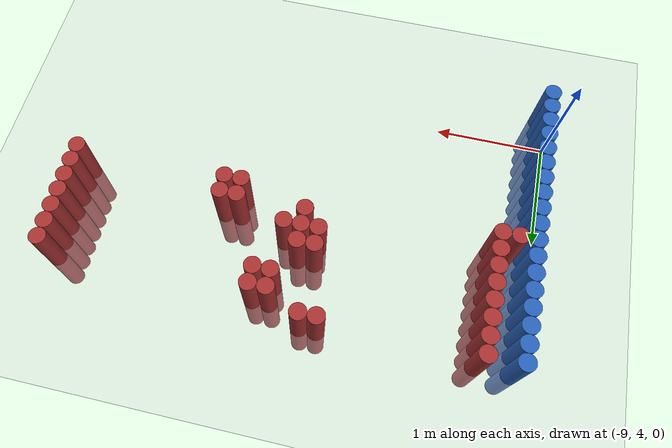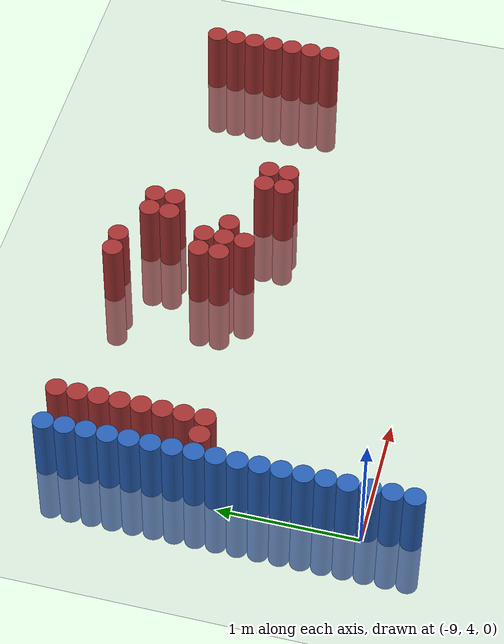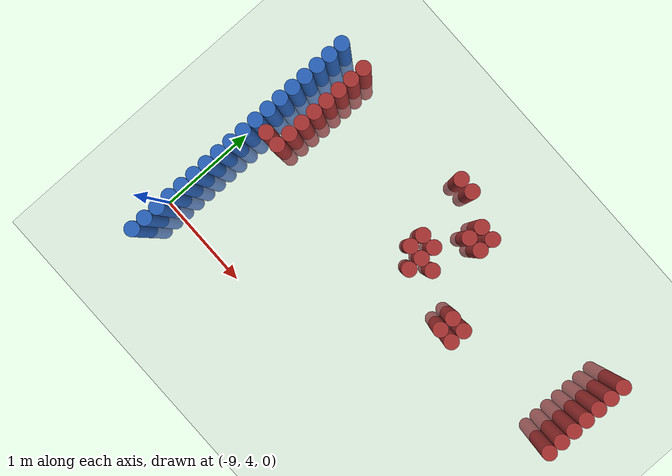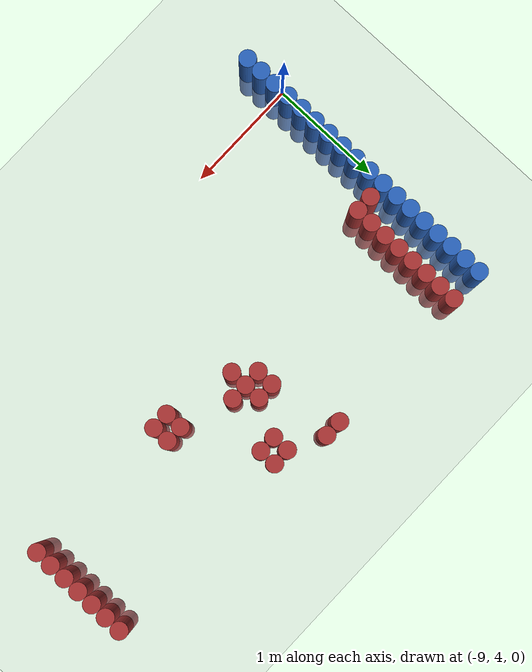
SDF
<sdf version="1.6">
 <world name="default">
  <model name="ground_plane">
   <static>1</static>
   <link name="link">
    <collision name="collision">
     <geometry><plane><normal>0 0 1</normal><size>100 100</size></plane></geometry>
     <surface><friction><ode><mu>100</mu><mu2>50</mu2></ode></friction></surface>
    </collision>
    <visual name="visual">
     <cast_shadows>0</cast_shadows>
     <geometry><plane><normal>0 0 1</normal><size>100 100</size></plane></geometry>
     <material>
      <script><uri>file://media/materials/scripts/gazebo.material</uri><name>Gazebo/Grey</name></script>
     </material>
    </visual>
   </link>
  </model>
  <model name="unit_cylinder_106">
   <static>1</static>
   <pose>-8.925000 3.675000 0.000000 0.000000 0.000000 0.000000</pose>
   <link name="link">
    <inertial>
     <mass>1</mass>
     <inertia><ixx>0.145833</ixx><ixy>0</ixy><ixz>0</ixz><iyy>0.145833</iyy><iyz>0</iyz><izz>0.125</izz></inertia>
    </inertial>
    <collision name="collision">
     <geometry><cylinder><radius>0.075000</radius><length>1</length></cylinder></geometry>
    </collision>
    <visual name="visual">
     <geometry><cylinder><radius>0.075000</radius><length>1</length></cylinder></geometry>
     <material>
      <ambient>0.152000 0.379000 0.720000 1</ambient>
      <diffuse>0.152000 0.379000 0.720000 1</diffuse>
     </material>
     <material>
      <script><name>Gazebo/Grey</name><uri>file://media/materials/scripts/gazebo.material</uri></script>
     </material>
    </visual>
   </link>
  </model>
  <model name="unit_cylinder_108">
   <static>1</static>
   <pose>-8.925000 3.825000 0.000000 0.000000 0.000000 0.000000</pose>
   <link name="link">
    <inertial>
     <mass>1</mass>
     <inertia><ixx>0.145833</ixx><ixy>0</ixy><ixz>0</ixz><iyy>0.145833</iyy><iyz>0</iyz><izz>0.125</izz></inertia>
    </inertial>
    <collision name="collision">
     <geometry><cylinder><radius>0.075000</radius><length>1</length></cylinder></geometry>
    </collision>
    <visual name="visual">
     <geometry><cylinder><radius>0.075000</radius><length>1</length></cylinder></geometry>
     <material>
      <ambient>0.152000 0.379000 0.720000 1</ambient>
      <diffuse>0.152000 0.379000 0.720000 1</diffuse>
     </material>
     <material>
      <script><name>Gazebo/Grey</name><uri>file://media/materials/scripts/gazebo.material</uri></script>
     </material>
    </visual>
   </link>
  </model>
  <model name="unit_cylinder_110">
   <static>1</static>
   <pose>-8.925000 3.975000 0.000000 0.000000 0.000000 0.000000</pose>
   <link name="link">
    <inertial>
     <mass>1</mass>
     <inertia><ixx>0.145833</ixx><ixy>0</ixy><ixz>0</ixz><iyy>0.145833</iyy><iyz>0</iyz><izz>0.125</izz></inertia>
    </inertial>
    <collision name="collision">
     <geometry><cylinder><radius>0.075000</radius><length>1</length></cylinder></geometry>
    </collision>
    <visual name="visual">
     <geometry><cylinder><radius>0.075000</radius><length>1</length></cylinder></geometry>
     <material>
      <ambient>0.152000 0.379000 0.720000 1</ambient>
      <diffuse>0.152000 0.379000 0.720000 1</diffuse>
     </material>
     <material>
      <script><name>Gazebo/Grey</name><uri>file://media/materials/scripts/gazebo.material</uri></script>
     </material>
    </visual>
   </link>
  </model>
  <model name="unit_cylinder_112">
   <static>1</static>
   <pose>-8.925000 4.125000 0.000000 0.000000 0.000000 0.000000</pose>
   <link name="link">
    <inertial>
     <mass>1</mass>
     <inertia><ixx>0.145833</ixx><ixy>0</ixy><ixz>0</ixz><iyy>0.145833</iyy><iyz>0</iyz><izz>0.125</izz></inertia>
    </inertial>
    <collision name="collision">
     <geometry><cylinder><radius>0.075000</radius><length>1</length></cylinder></geometry>
    </collision>
    <visual name="visual">
     <geometry><cylinder><radius>0.075000</radius><length>1</length></cylinder></geometry>
     <material>
      <ambient>0.152000 0.379000 0.720000 1</ambient>
      <diffuse>0.152000 0.379000 0.720000 1</diffuse>
     </material>
     <material>
      <script><name>Gazebo/Grey</name><uri>file://media/materials/scripts/gazebo.material</uri></script>
     </material>
    </visual>
   </link>
  </model>
  <model name="unit_cylinder_114">
   <static>1</static>
   <pose>-8.925000 4.275000 0.000000 0.000000 0.000000 0.000000</pose>
   <link name="link">
    <inertial>
     <mass>1</mass>
     <inertia><ixx>0.145833</ixx><ixy>0</ixy><ixz>0</ixz><iyy>0.145833</iyy><iyz>0</iyz><izz>0.125</izz></inertia>
    </inertial>
    <collision name="collision">
     <geometry><cylinder><radius>0.075000</radius><length>1</length></cylinder></geometry>
    </collision>
    <visual name="visual">
     <geometry><cylinder><radius>0.075000</radius><length>1</length></cylinder></geometry>
     <material>
      <ambient>0.152000 0.379000 0.720000 1</ambient>
      <diffuse>0.152000 0.379000 0.720000 1</diffuse>
     </material>
     <material>
      <script><name>Gazebo/Grey</name><uri>file://media/materials/scripts/gazebo.material</uri></script>
     </material>
    </visual>
   </link>
  </model>
  <model name="unit_cylinder_116">
   <static>1</static>
   <pose>-8.925000 4.425000 0.000000 0.000000 0.000000 0.000000</pose>
   <link name="link">
    <inertial>
     <mass>1</mass>
     <inertia><ixx>0.145833</ixx><ixy>0</ixy><ixz>0</ixz><iyy>0.145833</iyy><iyz>0</iyz><izz>0.125</izz></inertia>
    </inertial>
    <collision name="collision">
     <geometry><cylinder><radius>0.075000</radius><length>1</length></cylinder></geometry>
    </collision>
    <visual name="visual">
     <geometry><cylinder><radius>0.075000</radius><length>1</length></cylinder></geometry>
     <material>
      <ambient>0.152000 0.379000 0.720000 1</ambient>
      <diffuse>0.152000 0.379000 0.720000 1</diffuse>
     </material>
     <material>
      <script><name>Gazebo/Grey</name><uri>file://media/materials/scripts/gazebo.material</uri></script>
     </material>
    </visual>
   </link>
  </model>
  <model name="unit_cylinder_118">
   <static>1</static>
   <pose>-8.925000 4.575000 0.000000 0.000000 0.000000 0.000000</pose>
   <link name="link">
    <inertial>
     <mass>1</mass>
     <inertia><ixx>0.145833</ixx><ixy>0</ixy><ixz>0</ixz><iyy>0.145833</iyy><iyz>0</iyz><izz>0.125</izz></inertia>
    </inertial>
    <collision name="collision">
     <geometry><cylinder><radius>0.075000</radius><length>1</length></cylinder></geometry>
    </collision>
    <visual name="visual">
     <geometry><cylinder><radius>0.075000</radius><length>1</length></cylinder></geometry>
     <material>
      <ambient>0.152000 0.379000 0.720000 1</ambient>
      <diffuse>0.152000 0.379000 0.720000 1</diffuse>
     </material>
     <material>
      <script><name>Gazebo/Grey</name><uri>file://media/materials/scripts/gazebo.material</uri></script>
     </material>
    </visual>
   </link>
  </model>
  <model name="unit_cylinder_120">
   <static>1</static>
   <pose>-8.925000 4.725000 0.000000 0.000000 0.000000 0.000000</pose>
   <link name="link">
    <inertial>
     <mass>1</mass>
     <inertia><ixx>0.145833</ixx><ixy>0</ixy><ixz>0</ixz><iyy>0.145833</iyy><iyz>0</iyz><izz>0.125</izz></inertia>
    </inertial>
    <collision name="collision">
     <geometry><cylinder><radius>0.075000</radius><length>1</length></cylinder></geometry>
    </collision>
    <visual name="visual">
     <geometry><cylinder><radius>0.075000</radius><length>1</length></cylinder></geometry>
     <material>
      <ambient>0.152000 0.379000 0.720000 1</ambient>
      <diffuse>0.152000 0.379000 0.720000 1</diffuse>
     </material>
     <material>
      <script><name>Gazebo/Grey</name><uri>file://media/materials/scripts/gazebo.material</uri></script>
     </material>
    </visual>
   </link>
  </model>
  <model name="unit_cylinder_122">
   <static>1</static>
   <pose>-8.925000 4.875000 0.000000 0.000000 0.000000 0.000000</pose>
   <link name="link">
    <inertial>
     <mass>1</mass>
     <inertia><ixx>0.145833</ixx><ixy>0</ixy><ixz>0</ixz><iyy>0.145833</iyy><iyz>0</iyz><izz>0.125</izz></inertia>
    </inertial>
    <collision name="collision">
     <geometry><cylinder><radius>0.075000</radius><length>1</length></cylinder></geometry>
    </collision>
    <visual name="visual">
     <geometry><cylinder><radius>0.075000</radius><length>1</length></cylinder></geometry>
     <material>
      <ambient>0.152000 0.379000 0.720000 1</ambient>
      <diffuse>0.152000 0.379000 0.720000 1</diffuse>
     </material>
     <material>
      <script><name>Gazebo/Grey</name><uri>file://media/materials/scripts/gazebo.material</uri></script>
     </material>
    </visual>
   </link>
  </model>
  <model name="unit_cylinder_124">
   <static>1</static>
   <pose>-8.925000 5.025000 0.000000 0.000000 0.000000 0.000000</pose>
   <link name="link">
    <inertial>
     <mass>1</mass>
     <inertia><ixx>0.145833</ixx><ixy>0</ixy><ixz>0</ixz><iyy>0.145833</iyy><iyz>0</iyz><izz>0.125</izz></inertia>
    </inertial>
    <collision name="collision">
     <geometry><cylinder><radius>0.075000</radius><length>1</length></cylinder></geometry>
    </collision>
    <visual name="visual">
     <geometry><cylinder><radius>0.075000</radius><length>1</length></cylinder></geometry>
     <material>
      <ambient>0.152000 0.379000 0.720000 1</ambient>
      <diffuse>0.152000 0.379000 0.720000 1</diffuse>
     </material>
     <material>
      <script><name>Gazebo/Grey</name><uri>file://media/materials/scripts/gazebo.material</uri></script>
     </material>
    </visual>
   </link>
  </model>
  <model name="unit_cylinder_125">
   <static>1</static>
   <pose>-8.925000 5.175000 0.000000 0.000000 0.000000 0.000000</pose>
   <link name="link">
    <inertial>
     <mass>1</mass>
     <inertia><ixx>0.145833</ixx><ixy>0</ixy><ixz>0</ixz><iyy>0.145833</iyy><iyz>0</iyz><izz>0.125</izz></inertia>
    </inertial>
    <collision name="collision">
     <geometry><cylinder><radius>0.075000</radius><length>1</length></cylinder></geometry>
    </collision>
    <visual name="visual">
     <geometry><cylinder><radius>0.075000</radius><length>1</length></cylinder></geometry>
     <material>
      <ambient>0.152000 0.379000 0.720000 1</ambient>
      <diffuse>0.152000 0.379000 0.720000 1</diffuse>
     </material>
     <material>
      <script><name>Gazebo/Grey</name><uri>file://media/materials/scripts/gazebo.material</uri></script>
     </material>
    </visual>
   </link>
  </model>
  <model name="unit_cylinder_126">
   <static>1</static>
   <pose>-8.925000 5.325000 0.000000 0.000000 0.000000 0.000000</pose>
   <link name="link">
    <inertial>
     <mass>1</mass>
     <inertia><ixx>0.145833</ixx><ixy>0</ixy><ixz>0</ixz><iyy>0.145833</iyy><iyz>0</iyz><izz>0.125</izz></inertia>
    </inertial>
    <collision name="collision">
     <geometry><cylinder><radius>0.075000</radius><length>1</length></cylinder></geometry>
    </collision>
    <visual name="visual">
     <geometry><cylinder><radius>0.075000</radius><length>1</length></cylinder></geometry>
     <material>
      <ambient>0.152000 0.379000 0.720000 1</ambient>
      <diffuse>0.152000 0.379000 0.720000 1</diffuse>
     </material>
     <material>
      <script><name>Gazebo/Grey</name><uri>file://media/materials/scripts/gazebo.material</uri></script>
     </material>
    </visual>
   </link>
  </model>
  <model name="unit_cylinder_127">
   <static>1</static>
   <pose>-8.925000 5.475000 0.000000 0.000000 0.000000 0.000000</pose>
   <link name="link">
    <inertial>
     <mass>1</mass>
     <inertia><ixx>0.145833</ixx><ixy>0</ixy><ixz>0</ixz><iyy>0.145833</iyy><iyz>0</iyz><izz>0.125</izz></inertia>
    </inertial>
    <collision name="collision">
     <geometry><cylinder><radius>0.075000</radius><length>1</length></cylinder></geometry>
    </collision>
    <visual name="visual">
     <geometry><cylinder><radius>0.075000</radius><length>1</length></cylinder></geometry>
     <material>
      <ambient>0.152000 0.379000 0.720000 1</ambient>
      <diffuse>0.152000 0.379000 0.720000 1</diffuse>
     </material>
     <material>
      <script><name>Gazebo/Grey</name><uri>file://media/materials/scripts/gazebo.material</uri></script>
     </material>
    </visual>
   </link>
  </model>
  <model name="unit_cylinder_128">
   <static>1</static>
   <pose>-8.925000 5.625000 0.000000 0.000000 0.000000 0.000000</pose>
   <link name="link">
    <inertial>
     <mass>1</mass>
     <inertia><ixx>0.145833</ixx><ixy>0</ixy><ixz>0</ixz><iyy>0.145833</iyy><iyz>0</iyz><izz>0.125</izz></inertia>
    </inertial>
    <collision name="collision">
     <geometry><cylinder><radius>0.075000</radius><length>1</length></cylinder></geometry>
    </collision>
    <visual name="visual">
     <geometry><cylinder><radius>0.075000</radius><length>1</length></cylinder></geometry>
     <material>
      <ambient>0.152000 0.379000 0.720000 1</ambient>
      <diffuse>0.152000 0.379000 0.720000 1</diffuse>
     </material>
     <material>
      <script><name>Gazebo/Grey</name><uri>file://media/materials/scripts/gazebo.material</uri></script>
     </material>
    </visual>
   </link>
  </model>
  <model name="unit_cylinder_129">
   <static>1</static>
   <pose>-8.925000 5.775000 0.000000 0.000000 0.000000 0.000000</pose>
   <link name="link">
    <inertial>
     <mass>1</mass>
     <inertia><ixx>0.145833</ixx><ixy>0</ixy><ixz>0</ixz><iyy>0.145833</iyy><iyz>0</iyz><izz>0.125</izz></inertia>
    </inertial>
    <collision name="collision">
     <geometry><cylinder><radius>0.075000</radius><length>1</length></cylinder></geometry>
    </collision>
    <visual name="visual">
     <geometry><cylinder><radius>0.075000</radius><length>1</length></cylinder></geometry>
     <material>
      <ambient>0.152000 0.379000 0.720000 1</ambient>
      <diffuse>0.152000 0.379000 0.720000 1</diffuse>
     </material>
     <material>
      <script><name>Gazebo/Grey</name><uri>file://media/materials/scripts/gazebo.material</uri></script>
     </material>
    </visual>
   </link>
  </model>
  <model name="unit_cylinder_130">
   <static>1</static>
   <pose>-8.925000 5.925000 0.000000 0.000000 0.000000 0.000000</pose>
   <link name="link">
    <inertial>
     <mass>1</mass>
     <inertia><ixx>0.145833</ixx><ixy>0</ixy><ixz>0</ixz><iyy>0.145833</iyy><iyz>0</iyz><izz>0.125</izz></inertia>
    </inertial>
    <collision name="collision">
     <geometry><cylinder><radius>0.075000</radius><length>1</length></cylinder></geometry>
    </collision>
    <visual name="visual">
     <geometry><cylinder><radius>0.075000</radius><length>1</length></cylinder></geometry>
     <material>
      <ambient>0.152000 0.379000 0.720000 1</ambient>
      <diffuse>0.152000 0.379000 0.720000 1</diffuse>
     </material>
     <material>
      <script><name>Gazebo/Grey</name><uri>file://media/materials/scripts/gazebo.material</uri></script>
     </material>
    </visual>
   </link>
  </model>
  <model name="unit_cylinder_131">
   <static>1</static>
   <pose>-8.925000 6.075000 0.000000 0.000000 0.000000 0.000000</pose>
   <link name="link">
    <inertial>
     <mass>1</mass>
     <inertia><ixx>0.145833</ixx><ixy>0</ixy><ixz>0</ixz><iyy>0.145833</iyy><iyz>0</iyz><izz>0.125</izz></inertia>
    </inertial>
    <collision name="collision">
     <geometry><cylinder><radius>0.075000</radius><length>1</length></cylinder></geometry>
    </collision>
    <visual name="visual">
     <geometry><cylinder><radius>0.075000</radius><length>1</length></cylinder></geometry>
     <material>
      <ambient>0.152000 0.379000 0.720000 1</ambient>
      <diffuse>0.152000 0.379000 0.720000 1</diffuse>
     </material>
     <material>
      <script><name>Gazebo/Grey</name><uri>file://media/materials/scripts/gazebo.material</uri></script>
     </material>
    </visual>
   </link>
  </model>
  <model name="unit_cylinder_132">
   <static>1</static>
   <pose>-8.925000 6.225000 0.000000 0.000000 0.000000 0.000000</pose>
   <link name="link">
    <inertial>
     <mass>1</mass>
     <inertia><ixx>0.145833</ixx><ixy>0</ixy><ixz>0</ixz><iyy>0.145833</iyy><iyz>0</iyz><izz>0.125</izz></inertia>
    </inertial>
    <collision name="collision">
     <geometry><cylinder><radius>0.075000</radius><length>1</length></cylinder></geometry>
    </collision>
    <visual name="visual">
     <geometry><cylinder><radius>0.075000</radius><length>1</length></cylinder></geometry>
     <material>
      <ambient>0.152000 0.379000 0.720000 1</ambient>
      <diffuse>0.152000 0.379000 0.720000 1</diffuse>
     </material>
     <material>
      <script><name>Gazebo/Grey</name><uri>file://media/materials/scripts/gazebo.material</uri></script>
     </material>
    </visual>
   </link>
  </model>
  <model name="unit_cylinder_155">
   <static>1</static>
   <pose>-8.775000 5.175000 0.000000 0.000000 0.000000 0.000000</pose>
   <link name="link">
    <inertial>
     <mass>1</mass>
     <inertia><ixx>0.145833</ixx><ixy>0</ixy><ixz>0</ixz><iyy>0.145833</iyy><iyz>0</iyz><izz>0.125</izz></inertia>
    </inertial>
    <collision name="collision">
     <geometry><cylinder><radius>0.075000</radius><length>1</length></cylinder></geometry>
    </collision>
    <visual name="visual">
     <geometry><cylinder><radius>0.075000</radius><length>1</length></cylinder></geometry>
     <material>
      <ambient>0.648000 0.192000 0.192000 1</ambient>
      <diffuse>0.648000 0.192000 0.192000 1</diffuse>
     </material>
     <material>
      <script><name>Gazebo/Grey</name><uri>file://media/materials/scripts/gazebo.material</uri></script>
     </material>
    </visual>
   </link>
  </model>
  <model name="unit_cylinder_157">
   <static>1</static>
   <pose>-8.625000 5.175000 0.000000 0.000000 0.000000 0.000000</pose>
   <link name="link">
    <inertial>
     <mass>1</mass>
     <inertia><ixx>0.145833</ixx><ixy>0</ixy><ixz>0</ixz><iyy>0.145833</iyy><iyz>0</iyz><izz>0.125</izz></inertia>
    </inertial>
    <collision name="collision">
     <geometry><cylinder><radius>0.075000</radius><length>1</length></cylinder></geometry>
    </collision>
    <visual name="visual">
     <geometry><cylinder><radius>0.075000</radius><length>1</length></cylinder></geometry>
     <material>
      <ambient>0.648000 0.192000 0.192000 1</ambient>
      <diffuse>0.648000 0.192000 0.192000 1</diffuse>
     </material>
     <material>
      <script><name>Gazebo/Grey</name><uri>file://media/materials/scripts/gazebo.material</uri></script>
     </material>
    </visual>
   </link>
  </model>
  <model name="unit_cylinder_158">
   <static>1</static>
   <pose>-8.625000 5.325000 0.000000 0.000000 0.000000 0.000000</pose>
   <link name="link">
    <inertial>
     <mass>1</mass>
     <inertia><ixx>0.145833</ixx><ixy>0</ixy><ixz>0</ixz><iyy>0.145833</iyy><iyz>0</iyz><izz>0.125</izz></inertia>
    </inertial>
    <collision name="collision">
     <geometry><cylinder><radius>0.075000</radius><length>1</length></cylinder></geometry>
    </collision>
    <visual name="visual">
     <geometry><cylinder><radius>0.075000</radius><length>1</length></cylinder></geometry>
     <material>
      <ambient>0.648000 0.192000 0.192000 1</ambient>
      <diffuse>0.648000 0.192000 0.192000 1</diffuse>
     </material>
     <material>
      <script><name>Gazebo/Grey</name><uri>file://media/materials/scripts/gazebo.material</uri></script>
     </material>
    </visual>
   </link>
  </model>
  <model name="unit_cylinder_159">
   <static>1</static>
   <pose>-8.625000 5.475000 0.000000 0.000000 0.000000 0.000000</pose>
   <link name="link">
    <inertial>
     <mass>1</mass>
     <inertia><ixx>0.145833</ixx><ixy>0</ixy><ixz>0</ixz><iyy>0.145833</iyy><iyz>0</iyz><izz>0.125</izz></inertia>
    </inertial>
    <collision name="collision">
     <geometry><cylinder><radius>0.075000</radius><length>1</length></cylinder></geometry>
    </collision>
    <visual name="visual">
     <geometry><cylinder><radius>0.075000</radius><length>1</length></cylinder></geometry>
     <material>
      <ambient>0.648000 0.192000 0.192000 1</ambient>
      <diffuse>0.648000 0.192000 0.192000 1</diffuse>
     </material>
     <material>
      <script><name>Gazebo/Grey</name><uri>file://media/materials/scripts/gazebo.material</uri></script>
     </material>
    </visual>
   </link>
  </model>
  <model name="unit_cylinder_160">
   <static>1</static>
   <pose>-8.625000 5.625000 0.000000 0.000000 0.000000 0.000000</pose>
   <link name="link">
    <inertial>
     <mass>1</mass>
     <inertia><ixx>0.145833</ixx><ixy>0</ixy><ixz>0</ixz><iyy>0.145833</iyy><iyz>0</iyz><izz>0.125</izz></inertia>
    </inertial>
    <collision name="collision">
     <geometry><cylinder><radius>0.075000</radius><length>1</length></cylinder></geometry>
    </collision>
    <visual name="visual">
     <geometry><cylinder><radius>0.075000</radius><length>1</length></cylinder></geometry>
     <material>
      <ambient>0.648000 0.192000 0.192000 1</ambient>
      <diffuse>0.648000 0.192000 0.192000 1</diffuse>
     </material>
     <material>
      <script><name>Gazebo/Grey</name><uri>file://media/materials/scripts/gazebo.material</uri></script>
     </material>
    </visual>
   </link>
  </model>
  <model name="unit_cylinder_161">
   <static>1</static>
   <pose>-8.625000 5.775000 0.000000 0.000000 0.000000 0.000000</pose>
   <link name="link">
    <inertial>
     <mass>1</mass>
     <inertia><ixx>0.145833</ixx><ixy>0</ixy><ixz>0</ixz><iyy>0.145833</iyy><iyz>0</iyz><izz>0.125</izz></inertia>
    </inertial>
    <collision name="collision">
     <geometry><cylinder><radius>0.075000</radius><length>1</length></cylinder></geometry>
    </collision>
    <visual name="visual">
     <geometry><cylinder><radius>0.075000</radius><length>1</length></cylinder></geometry>
     <material>
      <ambient>0.648000 0.192000 0.192000 1</ambient>
      <diffuse>0.648000 0.192000 0.192000 1</diffuse>
     </material>
     <material>
      <script><name>Gazebo/Grey</name><uri>file://media/materials/scripts/gazebo.material</uri></script>
     </material>
    </visual>
   </link>
  </model>
  <model name="unit_cylinder_162">
   <static>1</static>
   <pose>-8.625000 5.925000 0.000000 0.000000 0.000000 0.000000</pose>
   <link name="link">
    <inertial>
     <mass>1</mass>
     <inertia><ixx>0.145833</ixx><ixy>0</ixy><ixz>0</ixz><iyy>0.145833</iyy><iyz>0</iyz><izz>0.125</izz></inertia>
    </inertial>
    <collision name="collision">
     <geometry><cylinder><radius>0.075000</radius><length>1</length></cylinder></geometry>
    </collision>
    <visual name="visual">
     <geometry><cylinder><radius>0.075000</radius><length>1</length></cylinder></geometry>
     <material>
      <ambient>0.648000 0.192000 0.192000 1</ambient>
      <diffuse>0.648000 0.192000 0.192000 1</diffuse>
     </material>
     <material>
      <script><name>Gazebo/Grey</name><uri>file://media/materials/scripts/gazebo.material</uri></script>
     </material>
    </visual>
   </link>
  </model>
  <model name="unit_cylinder_163">
   <static>1</static>
   <pose>-8.625000 6.075000 0.000000 0.000000 0.000000 0.000000</pose>
   <link name="link">
    <inertial>
     <mass>1</mass>
     <inertia><ixx>0.145833</ixx><ixy>0</ixy><ixz>0</ixz><iyy>0.145833</iyy><iyz>0</iyz><izz>0.125</izz></inertia>
    </inertial>
    <collision name="collision">
     <geometry><cylinder><radius>0.075000</radius><length>1</length></cylinder></geometry>
    </collision>
    <visual name="visual">
     <geometry><cylinder><radius>0.075000</radius><length>1</length></cylinder></geometry>
     <material>
      <ambient>0.648000 0.192000 0.192000 1</ambient>
      <diffuse>0.648000 0.192000 0.192000 1</diffuse>
     </material>
     <material>
      <script><name>Gazebo/Grey</name><uri>file://media/materials/scripts/gazebo.material</uri></script>
     </material>
    </visual>
   </link>
  </model>
  <model name="unit_cylinder_164">
   <static>1</static>
   <pose>-8.625000 6.225000 0.000000 0.000000 0.000000 0.000000</pose>
   <link name="link">
    <inertial>
     <mass>1</mass>
     <inertia><ixx>0.145833</ixx><ixy>0</ixy><ixz>0</ixz><iyy>0.145833</iyy><iyz>0</iyz><izz>0.125</izz></inertia>
    </inertial>
    <collision name="collision">
     <geometry><cylinder><radius>0.075000</radius><length>1</length></cylinder></geometry>
    </collision>
    <visual name="visual">
     <geometry><cylinder><radius>0.075000</radius><length>1</length></cylinder></geometry>
     <material>
      <ambient>0.648000 0.192000 0.192000 1</ambient>
      <diffuse>0.648000 0.192000 0.192000 1</diffuse>
     </material>
     <material>
      <script><name>Gazebo/Grey</name><uri>file://media/materials/scripts/gazebo.material</uri></script>
     </material>
    </visual>
   </link>
  </model>
  <model name="unit_cylinder_191">
   <static>1</static>
   <pose>-7.275000 6.225000 0.000000 0.000000 0.000000 0.000000</pose>
   <link name="link">
    <inertial>
     <mass>1</mass>
     <inertia><ixx>0.145833</ixx><ixy>0</ixy><ixz>0</ixz><iyy>0.145833</iyy><iyz>0</iyz><izz>0.125</izz></inertia>
    </inertial>
    <collision name="collision">
     <geometry><cylinder><radius>0.075000</radius><length>1</length></cylinder></geometry>
    </collision>
    <visual name="visual">
     <geometry><cylinder><radius>0.075000</radius><length>1</length></cylinder></geometry>
     <material>
      <ambient>0.648000 0.192000 0.192000 1</ambient>
      <diffuse>0.648000 0.192000 0.192000 1</diffuse>
     </material>
     <material>
      <script><name>Gazebo/Grey</name><uri>file://media/materials/scripts/gazebo.material</uri></script>
     </material>
    </visual>
   </link>
  </model>
  <model name="unit_cylinder_197">
   <static>1</static>
   <pose>-7.125000 5.475000 0.000000 0.000000 0.000000 0.000000</pose>
   <link name="link">
    <inertial>
     <mass>1</mass>
     <inertia><ixx>0.145833</ixx><ixy>0</ixy><ixz>0</ixz><iyy>0.145833</iyy><iyz>0</iyz><izz>0.125</izz></inertia>
    </inertial>
    <collision name="collision">
     <geometry><cylinder><radius>0.075000</radius><length>1</length></cylinder></geometry>
    </collision>
    <visual name="visual">
     <geometry><cylinder><radius>0.075000</radius><length>1</length></cylinder></geometry>
     <material>
      <ambient>0.648000 0.192000 0.192000 1</ambient>
      <diffuse>0.648000 0.192000 0.192000 1</diffuse>
     </material>
     <material>
      <script><name>Gazebo/Grey</name><uri>file://media/materials/scripts/gazebo.material</uri></script>
     </material>
    </visual>
   </link>
  </model>
  <model name="unit_cylinder_198">
   <static>1</static>
   <pose>-7.125000 5.625000 0.000000 0.000000 0.000000 0.000000</pose>
   <link name="link">
    <inertial>
     <mass>1</mass>
     <inertia><ixx>0.145833</ixx><ixy>0</ixy><ixz>0</ixz><iyy>0.145833</iyy><iyz>0</iyz><izz>0.125</izz></inertia>
    </inertial>
    <collision name="collision">
     <geometry><cylinder><radius>0.075000</radius><length>1</length></cylinder></geometry>
    </collision>
    <visual name="visual">
     <geometry><cylinder><radius>0.075000</radius><length>1</length></cylinder></geometry>
     <material>
      <ambient>0.648000 0.192000 0.192000 1</ambient>
      <diffuse>0.648000 0.192000 0.192000 1</diffuse>
     </material>
     <material>
      <script><name>Gazebo/Grey</name><uri>file://media/materials/scripts/gazebo.material</uri></script>
     </material>
    </visual>
   </link>
  </model>
  <model name="unit_cylinder_199">
   <static>1</static>
   <pose>-7.125000 6.225000 0.000000 0.000000 0.000000 0.000000</pose>
   <link name="link">
    <inertial>
     <mass>1</mass>
     <inertia><ixx>0.145833</ixx><ixy>0</ixy><ixz>0</ixz><iyy>0.145833</iyy><iyz>0</iyz><izz>0.125</izz></inertia>
    </inertial>
    <collision name="collision">
     <geometry><cylinder><radius>0.075000</radius><length>1</length></cylinder></geometry>
    </collision>
    <visual name="visual">
     <geometry><cylinder><radius>0.075000</radius><length>1</length></cylinder></geometry>
     <material>
      <ambient>0.648000 0.192000 0.192000 1</ambient>
      <diffuse>0.648000 0.192000 0.192000 1</diffuse>
     </material>
     <material>
      <script><name>Gazebo/Grey</name><uri>file://media/materials/scripts/gazebo.material</uri></script>
     </material>
    </visual>
   </link>
  </model>
  <model name="unit_cylinder_206">
   <static>1</static>
   <pose>-6.975000 5.325000 0.000000 0.000000 0.000000 0.000000</pose>
   <link name="link">
    <inertial>
     <mass>1</mass>
     <inertia><ixx>0.145833</ixx><ixy>0</ixy><ixz>0</ixz><iyy>0.145833</iyy><iyz>0</iyz><izz>0.125</izz></inertia>
    </inertial>
    <collision name="collision">
     <geometry><cylinder><radius>0.075000</radius><length>1</length></cylinder></geometry>
    </collision>
    <visual name="visual">
     <geometry><cylinder><radius>0.075000</radius><length>1</length></cylinder></geometry>
     <material>
      <ambient>0.648000 0.192000 0.192000 1</ambient>
      <diffuse>0.648000 0.192000 0.192000 1</diffuse>
     </material>
     <material>
      <script><name>Gazebo/Grey</name><uri>file://media/materials/scripts/gazebo.material</uri></script>
     </material>
    </visual>
   </link>
  </model>
  <model name="unit_cylinder_207">
   <static>1</static>
   <pose>-6.975000 5.475000 0.000000 0.000000 0.000000 0.000000</pose>
   <link name="link">
    <inertial>
     <mass>1</mass>
     <inertia><ixx>0.145833</ixx><ixy>0</ixy><ixz>0</ixz><iyy>0.145833</iyy><iyz>0</iyz><izz>0.125</izz></inertia>
    </inertial>
    <collision name="collision">
     <geometry><cylinder><radius>0.075000</radius><length>1</length></cylinder></geometry>
    </collision>
    <visual name="visual">
     <geometry><cylinder><radius>0.075000</radius><length>1</length></cylinder></geometry>
     <material>
      <ambient>0.648000 0.192000 0.192000 1</ambient>
      <diffuse>0.648000 0.192000 0.192000 1</diffuse>
     </material>
     <material>
      <script><name>Gazebo/Grey</name><uri>file://media/materials/scripts/gazebo.material</uri></script>
     </material>
    </visual>
   </link>
  </model>
  <model name="unit_cylinder_208">
   <static>1</static>
   <pose>-6.975000 5.625000 0.000000 0.000000 0.000000 0.000000</pose>
   <link name="link">
    <inertial>
     <mass>1</mass>
     <inertia><ixx>0.145833</ixx><ixy>0</ixy><ixz>0</ixz><iyy>0.145833</iyy><iyz>0</iyz><izz>0.125</izz></inertia>
    </inertial>
    <collision name="collision">
     <geometry><cylinder><radius>0.075000</radius><length>1</length></cylinder></geometry>
    </collision>
    <visual name="visual">
     <geometry><cylinder><radius>0.075000</radius><length>1</length></cylinder></geometry>
     <material>
      <ambient>0.648000 0.192000 0.192000 1</ambient>
      <diffuse>0.648000 0.192000 0.192000 1</diffuse>
     </material>
     <material>
      <script><name>Gazebo/Grey</name><uri>file://media/materials/scripts/gazebo.material</uri></script>
     </material>
    </visual>
   </link>
  </model>
  <model name="unit_cylinder_217">
   <static>1</static>
   <pose>-6.825000 5.475000 0.000000 0.000000 0.000000 0.000000</pose>
   <link name="link">
    <inertial>
     <mass>1</mass>
     <inertia><ixx>0.145833</ixx><ixy>0</ixy><ixz>0</ixz><iyy>0.145833</iyy><iyz>0</iyz><izz>0.125</izz></inertia>
    </inertial>
    <collision name="collision">
     <geometry><cylinder><radius>0.075000</radius><length>1</length></cylinder></geometry>
    </collision>
    <visual name="visual">
     <geometry><cylinder><radius>0.075000</radius><length>1</length></cylinder></geometry>
     <material>
      <ambient>0.648000 0.192000 0.192000 1</ambient>
      <diffuse>0.648000 0.192000 0.192000 1</diffuse>
     </material>
     <material>
      <script><name>Gazebo/Grey</name><uri>file://media/materials/scripts/gazebo.material</uri></script>
     </material>
    </visual>
   </link>
  </model>
  <model name="unit_cylinder_218">
   <static>1</static>
   <pose>-6.825000 5.925000 0.000000 0.000000 0.000000 0.000000</pose>
   <link name="link">
    <inertial>
     <mass>1</mass>
     <inertia><ixx>0.145833</ixx><ixy>0</ixy><ixz>0</ixz><iyy>0.145833</iyy><iyz>0</iyz><izz>0.125</izz></inertia>
    </inertial>
    <collision name="collision">
     <geometry><cylinder><radius>0.075000</radius><length>1</length></cylinder></geometry>
    </collision>
    <visual name="visual">
     <geometry><cylinder><radius>0.075000</radius><length>1</length></cylinder></geometry>
     <material>
      <ambient>0.648000 0.192000 0.192000 1</ambient>
      <diffuse>0.648000 0.192000 0.192000 1</diffuse>
     </material>
     <material>
      <script><name>Gazebo/Grey</name><uri>file://media/materials/scripts/gazebo.material</uri></script>
     </material>
    </visual>
   </link>
  </model>
  <model name="unit_cylinder_219">
   <static>1</static>
   <pose>-6.825000 6.075000 0.000000 0.000000 0.000000 0.000000</pose>
   <link name="link">
    <inertial>
     <mass>1</mass>
     <inertia><ixx>0.145833</ixx><ixy>0</ixy><ixz>0</ixz><iyy>0.145833</iyy><iyz>0</iyz><izz>0.125</izz></inertia>
    </inertial>
    <collision name="collision">
     <geometry><cylinder><radius>0.075000</radius><length>1</length></cylinder></geometry>
    </collision>
    <visual name="visual">
     <geometry><cylinder><radius>0.075000</radius><length>1</length></cylinder></geometry>
     <material>
      <ambient>0.648000 0.192000 0.192000 1</ambient>
      <diffuse>0.648000 0.192000 0.192000 1</diffuse>
     </material>
     <material>
      <script><name>Gazebo/Grey</name><uri>file://media/materials/scripts/gazebo.material</uri></script>
     </material>
    </visual>
   </link>
  </model>
  <model name="unit_cylinder_231">
   <static>1</static>
   <pose>-6.675000 5.925000 0.000000 0.000000 0.000000 0.000000</pose>
   <link name="link">
    <inertial>
     <mass>1</mass>
     <inertia><ixx>0.145833</ixx><ixy>0</ixy><ixz>0</ixz><iyy>0.145833</iyy><iyz>0</iyz><izz>0.125</izz></inertia>
    </inertial>
    <collision name="collision">
     <geometry><cylinder><radius>0.075000</radius><length>1</length></cylinder></geometry>
    </collision>
    <visual name="visual">
     <geometry><cylinder><radius>0.075000</radius><length>1</length></cylinder></geometry>
     <material>
      <ambient>0.648000 0.192000 0.192000 1</ambient>
      <diffuse>0.648000 0.192000 0.192000 1</diffuse>
     </material>
     <material>
      <script><name>Gazebo/Grey</name><uri>file://media/materials/scripts/gazebo.material</uri></script>
     </material>
    </visual>
   </link>
  </model>
  <model name="unit_cylinder_232">
   <static>1</static>
   <pose>-6.675000 6.075000 0.000000 0.000000 0.000000 0.000000</pose>
   <link name="link">
    <inertial>
     <mass>1</mass>
     <inertia><ixx>0.145833</ixx><ixy>0</ixy><ixz>0</ixz><iyy>0.145833</iyy><iyz>0</iyz><izz>0.125</izz></inertia>
    </inertial>
    <collision name="collision">
     <geometry><cylinder><radius>0.075000</radius><length>1</length></cylinder></geometry>
    </collision>
    <visual name="visual">
     <geometry><cylinder><radius>0.075000</radius><length>1</length></cylinder></geometry>
     <material>
      <ambient>0.648000 0.192000 0.192000 1</ambient>
      <diffuse>0.648000 0.192000 0.192000 1</diffuse>
     </material>
     <material>
      <script><name>Gazebo/Grey</name><uri>file://media/materials/scripts/gazebo.material</uri></script>
     </material>
    </visual>
   </link>
  </model>
  <model name="unit_cylinder_245">
   <static>1</static>
   <pose>-6.375000 5.175000 0.000000 0.000000 0.000000 0.000000</pose>
   <link name="link">
    <inertial>
     <mass>1</mass>
     <inertia><ixx>0.145833</ixx><ixy>0</ixy><ixz>0</ixz><iyy>0.145833</iyy><iyz>0</iyz><izz>0.125</izz></inertia>
    </inertial>
    <collision name="collision">
     <geometry><cylinder><radius>0.075000</radius><length>1</length></cylinder></geometry>
    </collision>
    <visual name="visual">
     <geometry><cylinder><radius>0.075000</radius><length>1</length></cylinder></geometry>
     <material>
      <ambient>0.648000 0.192000 0.192000 1</ambient>
      <diffuse>0.648000 0.192000 0.192000 1</diffuse>
     </material>
     <material>
      <script><name>Gazebo/Grey</name><uri>file://media/materials/scripts/gazebo.material</uri></script>
     </material>
    </visual>
   </link>
  </model>
  <model name="unit_cylinder_246">
   <static>1</static>
   <pose>-6.375000 5.325000 0.000000 0.000000 0.000000 0.000000</pose>
   <link name="link">
    <inertial>
     <mass>1</mass>
     <inertia><ixx>0.145833</ixx><ixy>0</ixy><ixz>0</ixz><iyy>0.145833</iyy><iyz>0</iyz><izz>0.125</izz></inertia>
    </inertial>
    <collision name="collision">
     <geometry><cylinder><radius>0.075000</radius><length>1</length></cylinder></geometry>
    </collision>
    <visual name="visual">
     <geometry><cylinder><radius>0.075000</radius><length>1</length></cylinder></geometry>
     <material>
      <ambient>0.648000 0.192000 0.192000 1</ambient>
      <diffuse>0.648000 0.192000 0.192000 1</diffuse>
     </material>
     <material>
      <script><name>Gazebo/Grey</name><uri>file://media/materials/scripts/gazebo.material</uri></script>
     </material>
    </visual>
   </link>
  </model>
  <model name="unit_cylinder_253">
   <static>1</static>
   <pose>-6.225000 5.175000 0.000000 0.000000 0.000000 0.000000</pose>
   <link name="link">
    <inertial>
     <mass>1</mass>
     <inertia><ixx>0.145833</ixx><ixy>0</ixy><ixz>0</ixz><iyy>0.145833</iyy><iyz>0</iyz><izz>0.125</izz></inertia>
    </inertial>
    <collision name="collision">
     <geometry><cylinder><radius>0.075000</radius><length>1</length></cylinder></geometry>
    </collision>
    <visual name="visual">
     <geometry><cylinder><radius>0.075000</radius><length>1</length></cylinder></geometry>
     <material>
      <ambient>0.648000 0.192000 0.192000 1</ambient>
      <diffuse>0.648000 0.192000 0.192000 1</diffuse>
     </material>
     <material>
      <script><name>Gazebo/Grey</name><uri>file://media/materials/scripts/gazebo.material</uri></script>
     </material>
    </visual>
   </link>
  </model>
  <model name="unit_cylinder_254">
   <static>1</static>
   <pose>-6.225000 5.325000 0.000000 0.000000 0.000000 0.000000</pose>
   <link name="link">
    <inertial>
     <mass>1</mass>
     <inertia><ixx>0.145833</ixx><ixy>0</ixy><ixz>0</ixz><iyy>0.145833</iyy><iyz>0</iyz><izz>0.125</izz></inertia>
    </inertial>
    <collision name="collision">
     <geometry><cylinder><radius>0.075000</radius><length>1</length></cylinder></geometry>
    </collision>
    <visual name="visual">
     <geometry><cylinder><radius>0.075000</radius><length>1</length></cylinder></geometry>
     <material>
      <ambient>0.648000 0.192000 0.192000 1</ambient>
      <diffuse>0.648000 0.192000 0.192000 1</diffuse>
     </material>
     <material>
      <script><name>Gazebo/Grey</name><uri>file://media/materials/scripts/gazebo.material</uri></script>
     </material>
    </visual>
   </link>
  </model>
  <model name="unit_cylinder_284">
   <static>1</static>
   <pose>-4.875000 5.175000 0.000000 0.000000 0.000000 0.000000</pose>
   <link name="link">
    <inertial>
     <mass>1</mass>
     <inertia><ixx>0.145833</ixx><ixy>0</ixy><ixz>0</ixz><iyy>0.145833</iyy><iyz>0</iyz><izz>0.125</izz></inertia>
    </inertial>
    <collision name="collision">
     <geometry><cylinder><radius>0.075000</radius><length>1</length></cylinder></geometry>
    </collision>
    <visual name="visual">
     <geometry><cylinder><radius>0.075000</radius><length>1</length></cylinder></geometry>
     <material>
      <ambient>0.648000 0.192000 0.192000 1</ambient>
      <diffuse>0.648000 0.192000 0.192000 1</diffuse>
     </material>
     <material>
      <script><name>Gazebo/Grey</name><uri>file://media/materials/scripts/gazebo.material</uri></script>
     </material>
    </visual>
   </link>
  </model>
  <model name="unit_cylinder_285">
   <static>1</static>
   <pose>-4.875000 5.325000 0.000000 0.000000 0.000000 0.000000</pose>
   <link name="link">
    <inertial>
     <mass>1</mass>
     <inertia><ixx>0.145833</ixx><ixy>0</ixy><ixz>0</ixz><iyy>0.145833</iyy><iyz>0</iyz><izz>0.125</izz></inertia>
    </inertial>
    <collision name="collision">
     <geometry><cylinder><radius>0.075000</radius><length>1</length></cylinder></geometry>
    </collision>
    <visual name="visual">
     <geometry><cylinder><radius>0.075000</radius><length>1</length></cylinder></geometry>
     <material>
      <ambient>0.648000 0.192000 0.192000 1</ambient>
      <diffuse>0.648000 0.192000 0.192000 1</diffuse>
     </material>
     <material>
      <script><name>Gazebo/Grey</name><uri>file://media/materials/scripts/gazebo.material</uri></script>
     </material>
    </visual>
   </link>
  </model>
  <model name="unit_cylinder_286">
   <static>1</static>
   <pose>-4.875000 5.475000 0.000000 0.000000 0.000000 0.000000</pose>
   <link name="link">
    <inertial>
     <mass>1</mass>
     <inertia><ixx>0.145833</ixx><ixy>0</ixy><ixz>0</ixz><iyy>0.145833</iyy><iyz>0</iyz><izz>0.125</izz></inertia>
    </inertial>
    <collision name="collision">
     <geometry><cylinder><radius>0.075000</radius><length>1</length></cylinder></geometry>
    </collision>
    <visual name="visual">
     <geometry><cylinder><radius>0.075000</radius><length>1</length></cylinder></geometry>
     <material>
      <ambient>0.648000 0.192000 0.192000 1</ambient>
      <diffuse>0.648000 0.192000 0.192000 1</diffuse>
     </material>
     <material>
      <script><name>Gazebo/Grey</name><uri>file://media/materials/scripts/gazebo.material</uri></script>
     </material>
    </visual>
   </link>
  </model>
  <model name="unit_cylinder_287">
   <static>1</static>
   <pose>-4.875000 5.625000 0.000000 0.000000 0.000000 0.000000</pose>
   <link name="link">
    <inertial>
     <mass>1</mass>
     <inertia><ixx>0.145833</ixx><ixy>0</ixy><ixz>0</ixz><iyy>0.145833</iyy><iyz>0</iyz><izz>0.125</izz></inertia>
    </inertial>
    <collision name="collision">
     <geometry><cylinder><radius>0.075000</radius><length>1</length></cylinder></geometry>
    </collision>
    <visual name="visual">
     <geometry><cylinder><radius>0.075000</radius><length>1</length></cylinder></geometry>
     <material>
      <ambient>0.648000 0.192000 0.192000 1</ambient>
      <diffuse>0.648000 0.192000 0.192000 1</diffuse>
     </material>
     <material>
      <script><name>Gazebo/Grey</name><uri>file://media/materials/scripts/gazebo.material</uri></script>
     </material>
    </visual>
   </link>
  </model>
  <model name="unit_cylinder_288">
   <static>1</static>
   <pose>-4.875000 5.775000 0.000000 0.000000 0.000000 0.000000</pose>
   <link name="link">
    <inertial>
     <mass>1</mass>
     <inertia><ixx>0.145833</ixx><ixy>0</ixy><ixz>0</ixz><iyy>0.145833</iyy><iyz>0</iyz><izz>0.125</izz></inertia>
    </inertial>
    <collision name="collision">
     <geometry><cylinder><radius>0.075000</radius><length>1</length></cylinder></geometry>
    </collision>
    <visual name="visual">
     <geometry><cylinder><radius>0.075000</radius><length>1</length></cylinder></geometry>
     <material>
      <ambient>0.648000 0.192000 0.192000 1</ambient>
      <diffuse>0.648000 0.192000 0.192000 1</diffuse>
     </material>
     <material>
      <script><name>Gazebo/Grey</name><uri>file://media/materials/scripts/gazebo.material</uri></script>
     </material>
    </visual>
   </link>
  </model>
  <model name="unit_cylinder_289">
   <static>1</static>
   <pose>-4.875000 5.925000 0.000000 0.000000 0.000000 0.000000</pose>
   <link name="link">
    <inertial>
     <mass>1</mass>
     <inertia><ixx>0.145833</ixx><ixy>0</ixy><ixz>0</ixz><iyy>0.145833</iyy><iyz>0</iyz><izz>0.125</izz></inertia>
    </inertial>
    <collision name="collision">
     <geometry><cylinder><radius>0.075000</radius><length>1</length></cylinder></geometry>
    </collision>
    <visual name="visual">
     <geometry><cylinder><radius>0.075000</radius><length>1</length></cylinder></geometry>
     <material>
      <ambient>0.648000 0.192000 0.192000 1</ambient>
      <diffuse>0.648000 0.192000 0.192000 1</diffuse>
     </material>
     <material>
      <script><name>Gazebo/Grey</name><uri>file://media/materials/scripts/gazebo.material</uri></script>
     </material>
    </visual>
   </link>
  </model>
  <model name="unit_cylinder_290">
   <static>1</static>
   <pose>-4.875000 6.075000 0.000000 0.000000 0.000000 0.000000</pose>
   <link name="link">
    <inertial>
     <mass>1</mass>
     <inertia><ixx>0.145833</ixx><ixy>0</ixy><ixz>0</ixz><iyy>0.145833</iyy><iyz>0</iyz><izz>0.125</izz></inertia>
    </inertial>
    <collision name="collision">
     <geometry><cylinder><radius>0.075000</radius><length>1</length></cylinder></geometry>
    </collision>
    <visual name="visual">
     <geometry><cylinder><radius>0.075000</radius><length>1</length></cylinder></geometry>
     <material>
      <ambient>0.648000 0.192000 0.192000 1</ambient>
      <diffuse>0.648000 0.192000 0.192000 1</diffuse>
     </material>
     <material>
      <script><name>Gazebo/Grey</name><uri>file://media/materials/scripts/gazebo.material</uri></script>
     </material>
    </visual>
   </link>
  </model>
 </world>
</sdf>
